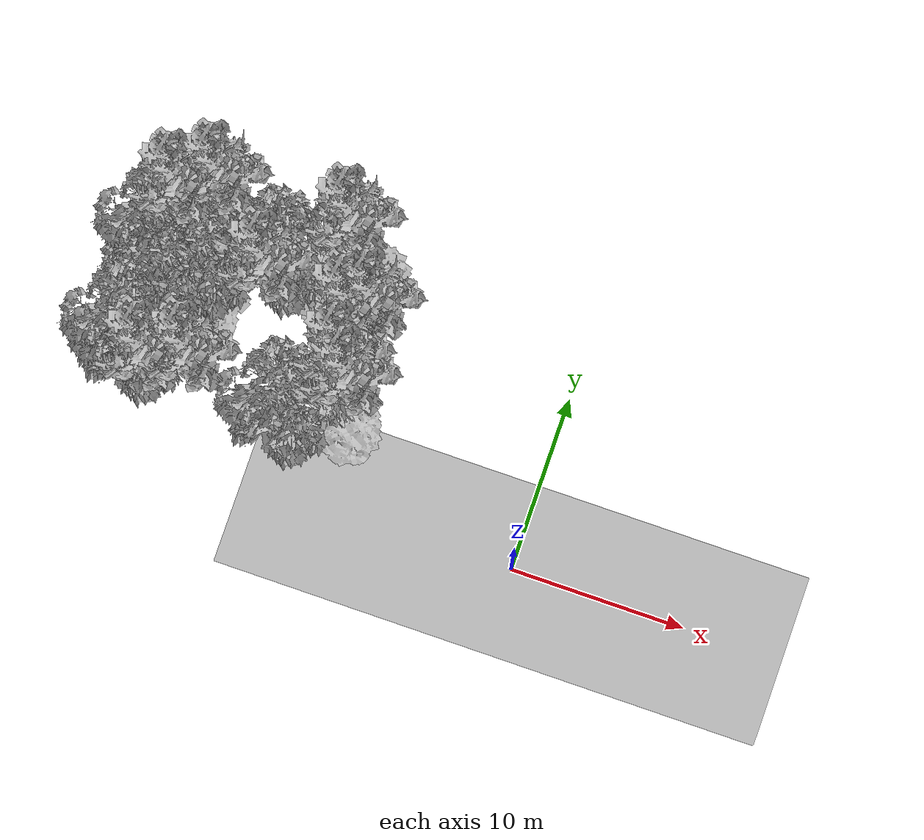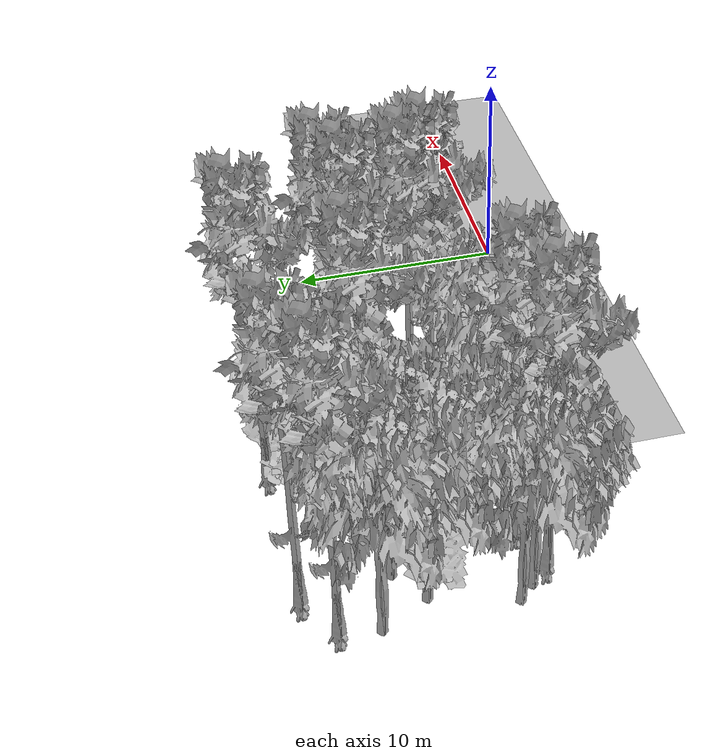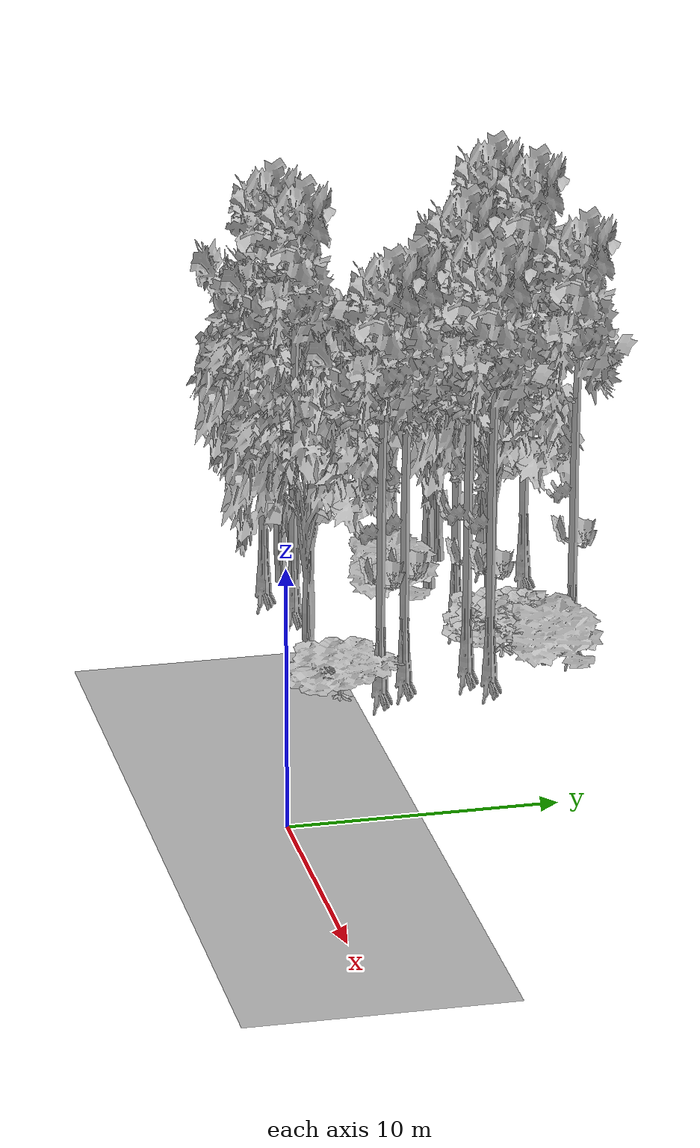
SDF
<sdf version="1.7">
 <world name="default">
  <model name="ground_plane">
   <static>1</static>
   <link name="link">
    <collision name="collision">
     <pose>-50 0 0 0 -0 0</pose>
     <geometry><plane><normal>0 0 1</normal><size>100 100</size></plane></geometry>
     <surface><contact><ode><min_depth>0.01</min_depth><max_vel>0</max_vel></ode></contact></surface>
    </collision>
    <visual name="grass">
     <cast_shadows>0</cast_shadows>
     <geometry>
      <mesh>
       <scale>0.5814285714285714 0.18142857142857144 0.1</scale>
       <uri>file://grass_plane/meshes/grass_plane.dae</uri>
      </mesh>
     </geometry>
    </visual>
   </link>
  </model>
  <model name="Tree 29">
   <static>1</static>
   <pose>-21.955945992777426 3.7048564605818015 0 1.57079 -0 0</pose>
   <link name="link">
    <collision name="collision">
     <geometry><mesh><scale>3.5 5 3.5</scale><uri>model://tree_9/meshes/tree_9.obj</uri></mesh></geometry>
    </collision>
    <visual name="visual">
     <geometry><mesh><scale>3.5 5 3.5</scale><uri>model://tree_9/meshes/tree_9.obj</uri></mesh></geometry>
    </visual>
   </link>
  </model>
  <model name="Tree 52">
   <static>1</static>
   <pose>-12.537899473644437 9.568062839223195 0 1.57079 -0 0</pose>
   <link name="link">
    <collision name="collision">
     <geometry><mesh><scale>3.5 5 3.5</scale><uri>model://tree_9/meshes/tree_9.obj</uri></mesh></geometry>
    </collision>
    <visual name="visual">
     <geometry><mesh><scale>3.5 5 3.5</scale><uri>model://tree_9/meshes/tree_9.obj</uri></mesh></geometry>
    </visual>
   </link>
  </model>
  <model name="Tree 64">
   <static>1</static>
   <pose>-19.784810935248345 4.420654904979241 0 1.57079 -0 0</pose>
   <link name="link">
    <collision name="collision">
     <geometry><mesh><scale>3.5 5 3.5</scale><uri>model://tree_9/meshes/tree_9.obj</uri></mesh></geometry>
    </collision>
    <visual name="visual">
     <geometry><mesh><scale>3.5 5 3.5</scale><uri>model://tree_9/meshes/tree_9.obj</uri></mesh></geometry>
    </visual>
   </link>
  </model>
  <model name="Tree 79">
   <static>1</static>
   <pose>-12.095251327177579 7.05173186314925 0 1.57079 -0 0</pose>
   <link name="link">
    <collision name="collision">
     <geometry><mesh><scale>3.5 5 3.5</scale><uri>model://tree_9/meshes/tree_9.obj</uri></mesh></geometry>
    </collision>
    <visual name="visual">
     <geometry><mesh><scale>3.5 5 3.5</scale><uri>model://tree_9/meshes/tree_9.obj</uri></mesh></geometry>
    </visual>
   </link>
  </model>
  <model name="Tree 84">
   <static>1</static>
   <pose>-23.680794243682385 11.014573051294605 0 1.57079 -0 0</pose>
   <link name="link">
    <collision name="collision">
     <geometry><mesh><scale>3.5 5 3.5</scale><uri>model://tree_2/meshes/tree_2.obj</uri></mesh></geometry>
    </collision>
    <visual name="visual">
     <geometry><mesh><scale>3.5 5 3.5</scale><uri>model://tree_2/meshes/tree_2.obj</uri></mesh></geometry>
    </visual>
   </link>
  </model>
  <model name="Tree 103">
   <static>1</static>
   <pose>-11.096874901117403 4.38925746500254 0 1.57079 -0 0</pose>
   <link name="link">
    <collision name="collision">
     <geometry><mesh><scale>4 2.5 4</scale><uri>model://tree_1/meshes/tree_1.obj</uri></mesh></geometry>
    </collision>
    <visual name="visual">
     <geometry><mesh><scale>4 2.5 4</scale><uri>model://tree_1/meshes/tree_1.obj</uri></mesh></geometry>
    </visual>
   </link>
  </model>
  <model name="Tree 108">
   <static>1</static>
   <pose>-21.351188141231248 13.92792080996524 0 1.57079 -0 0</pose>
   <link name="link">
    <collision name="collision">
     <geometry><mesh><scale>3.5 5 3.5</scale><uri>model://tree_9/meshes/tree_9.obj</uri></mesh></geometry>
    </collision>
    <visual name="visual">
     <geometry><mesh><scale>3.5 5 3.5</scale><uri>model://tree_9/meshes/tree_9.obj</uri></mesh></geometry>
    </visual>
   </link>
  </model>
  <model name="Tree 113">
   <static>1</static>
   <pose>-20.690780932021887 8.112693277886915 0 1.57079 -0 0</pose>
   <link name="link">
    <collision name="collision">
     <geometry><mesh><scale>3 2 3</scale><uri>model://tree_3/meshes/tree_3.obj</uri></mesh></geometry>
    </collision>
    <visual name="visual">
     <geometry><mesh><scale>3 2 3</scale><uri>model://tree_3/meshes/tree_3.obj</uri></mesh></geometry>
    </visual>
   </link>
  </model>
  <model name="Tree 131">
   <static>1</static>
   <pose>-14.31143432944556 11.744659000517423 0 1.57079 -0 0</pose>
   <link name="link">
    <collision name="collision">
     <geometry><mesh><scale>4 2.5 4</scale><uri>model://tree_1/meshes/tree_1.obj</uri></mesh></geometry>
    </collision>
    <visual name="visual">
     <geometry><mesh><scale>4 2.5 4</scale><uri>model://tree_1/meshes/tree_1.obj</uri></mesh></geometry>
    </visual>
   </link>
  </model>
  <model name="Tree 141">
   <static>1</static>
   <pose>-23.285315842116127 12.734498822601093 0 1.57079 -0 0</pose>
   <link name="link">
    <collision name="collision">
     <geometry><mesh><scale>3.5 5 3.5</scale><uri>model://tree_9/meshes/tree_9.obj</uri></mesh></geometry>
    </collision>
    <visual name="visual">
     <geometry><mesh><scale>3.5 5 3.5</scale><uri>model://tree_9/meshes/tree_9.obj</uri></mesh></geometry>
    </visual>
   </link>
  </model>
  <model name="Tree 152">
   <static>1</static>
   <pose>-12.790009930844157 12.654781536890198 0 1.57079 -0 0</pose>
   <link name="link">
    <collision name="collision">
     <geometry><mesh><scale>3 2 3</scale><uri>model://tree_3/meshes/tree_3.obj</uri></mesh></geometry>
    </collision>
    <visual name="visual">
     <geometry><mesh><scale>3 2 3</scale><uri>model://tree_3/meshes/tree_3.obj</uri></mesh></geometry>
    </visual>
   </link>
  </model>
  <model name="Tree 209">
   <static>1</static>
   <pose>-22.867922086702627 4.539806347099077 0 1.57079 -0 0</pose>
   <link name="link">
    <collision name="collision">
     <geometry><mesh><scale>3.5 5 3.5</scale><uri>model://tree_2/meshes/tree_2.obj</uri></mesh></geometry>
    </collision>
    <visual name="visual">
     <geometry><mesh><scale>3.5 5 3.5</scale><uri>model://tree_2/meshes/tree_2.obj</uri></mesh></geometry>
    </visual>
   </link>
  </model>
  <model name="Tree 262">
   <static>1</static>
   <pose>-20.924648378472448 10.0158936781094 0 1.57079 -0 0</pose>
   <link name="link">
    <collision name="collision">
     <geometry><mesh><scale>3.5 5 3.5</scale><uri>model://tree_2/meshes/tree_2.obj</uri></mesh></geometry>
    </collision>
    <visual name="visual">
     <geometry><mesh><scale>3.5 5 3.5</scale><uri>model://tree_2/meshes/tree_2.obj</uri></mesh></geometry>
    </visual>
   </link>
  </model>
  <model name="Tree 277">
   <static>1</static>
   <pose>-13.888274272460357 14.002939669385015 0 1.57079 -0 0</pose>
   <link name="link">
    <collision name="collision">
     <geometry><mesh><scale>3.5 5 3.5</scale><uri>model://tree_9/meshes/tree_9.obj</uri></mesh></geometry>
    </collision>
    <visual name="visual">
     <geometry><mesh><scale>3.5 5 3.5</scale><uri>model://tree_9/meshes/tree_9.obj</uri></mesh></geometry>
    </visual>
   </link>
  </model>
  <model name="Tree 284">
   <static>1</static>
   <pose>-11.359245018283843 5.969269583925872 0 1.57079 -0 0</pose>
   <link name="link">
    <collision name="collision">
     <geometry><mesh><scale>3.5 5 3.5</scale><uri>model://tree_9/meshes/tree_9.obj</uri></mesh></geometry>
    </collision>
    <visual name="visual">
     <geometry><mesh><scale>3.5 5 3.5</scale><uri>model://tree_9/meshes/tree_9.obj</uri></mesh></geometry>
    </visual>
   </link>
  </model>
  <model name="Tree 342">
   <static>1</static>
   <pose>-17.132179170706706 11.594545556446995 0 1.57079 -0 0</pose>
   <link name="link">
    <collision name="collision">
     <geometry><mesh><scale>3.5 5 3.5</scale><uri>model://tree_2/meshes/tree_2.obj</uri></mesh></geometry>
    </collision>
    <visual name="visual">
     <geometry><mesh><scale>3.5 5 3.5</scale><uri>model://tree_2/meshes/tree_2.obj</uri></mesh></geometry>
    </visual>
   </link>
  </model>
  <model name="Tree 354">
   <static>1</static>
   <pose>-17.452392233380813 10.297750606131913 0 1.57079 -0 0</pose>
   <link name="link">
    <collision name="collision">
     <geometry><mesh><scale>3.5 5 3.5</scale><uri>model://tree_9/meshes/tree_9.obj</uri></mesh></geometry>
    </collision>
    <visual name="visual">
     <geometry><mesh><scale>3.5 5 3.5</scale><uri>model://tree_9/meshes/tree_9.obj</uri></mesh></geometry>
    </visual>
   </link>
  </model>
  <model name="Tree 406">
   <static>1</static>
   <pose>-14.280288322771497 3.834700570529243 0 1.57079 -0 0</pose>
   <link name="link">
    <collision name="collision">
     <geometry><mesh><scale>3.5 5 3.5</scale><uri>model://tree_2/meshes/tree_2.obj</uri></mesh></geometry>
    </collision>
    <visual name="visual">
     <geometry><mesh><scale>3.5 5 3.5</scale><uri>model://tree_2/meshes/tree_2.obj</uri></mesh></geometry>
    </visual>
   </link>
  </model>
  <model name="Tree 454">
   <static>1</static>
   <pose>-14.205541652154523 11.365445372169347 0 1.57079 -0 0</pose>
   <link name="link">
    <collision name="collision">
     <geometry><mesh><scale>4 2.5 4</scale><uri>model://tree_1/meshes/tree_1.obj</uri></mesh></geometry>
    </collision>
    <visual name="visual">
     <geometry><mesh><scale>4 2.5 4</scale><uri>model://tree_1/meshes/tree_1.obj</uri></mesh></geometry>
    </visual>
   </link>
  </model>
  <model name="Tree 497">
   <static>1</static>
   <pose>-11.482278529216757 10.217036188931871 0 1.57079 -0 0</pose>
   <link name="link">
    <collision name="collision">
     <geometry><mesh><scale>3.5 5 3.5</scale><uri>model://tree_9/meshes/tree_9.obj</uri></mesh></geometry>
    </collision>
    <visual name="visual">
     <geometry><mesh><scale>3.5 5 3.5</scale><uri>model://tree_9/meshes/tree_9.obj</uri></mesh></geometry>
    </visual>
   </link>
  </model>
  <model name="Tree 498">
   <static>1</static>
   <pose>-14.619446687969713 11.203100551242688 0 1.57079 -0 0</pose>
   <link name="link">
    <collision name="collision">
     <geometry><mesh><scale>4 2.5 4</scale><uri>model://tree_1/meshes/tree_1.obj</uri></mesh></geometry>
    </collision>
    <visual name="visual">
     <geometry><mesh><scale>4 2.5 4</scale><uri>model://tree_1/meshes/tree_1.obj</uri></mesh></geometry>
    </visual>
   </link>
  </model>
  <model name="Tree 507">
   <static>1</static>
   <pose>-22.507566227515916 8.878553003385914 0 1.57079 -0 0</pose>
   <link name="link">
    <collision name="collision">
     <geometry><mesh><scale>3.5 5 3.5</scale><uri>model://tree_2/meshes/tree_2.obj</uri></mesh></geometry>
    </collision>
    <visual name="visual">
     <geometry><mesh><scale>3.5 5 3.5</scale><uri>model://tree_2/meshes/tree_2.obj</uri></mesh></geometry>
    </visual>
   </link>
  </model>
  <model name="Tree 512">
   <static>1</static>
   <pose>-23.558955057621827 5.229595889198134 0 1.57079 -0 0</pose>
   <link name="link">
    <collision name="collision">
     <geometry><mesh><scale>3.5 5 3.5</scale><uri>model://tree_2/meshes/tree_2.obj</uri></mesh></geometry>
    </collision>
    <visual name="visual">
     <geometry><mesh><scale>3.5 5 3.5</scale><uri>model://tree_2/meshes/tree_2.obj</uri></mesh></geometry>
    </visual>
   </link>
  </model>
 </world>
</sdf>
